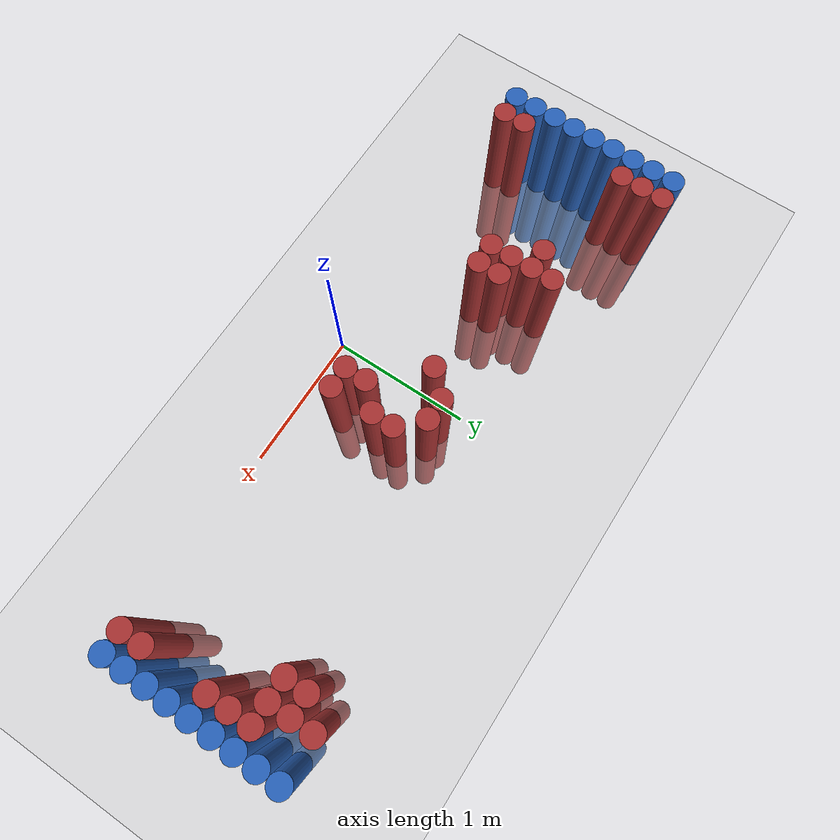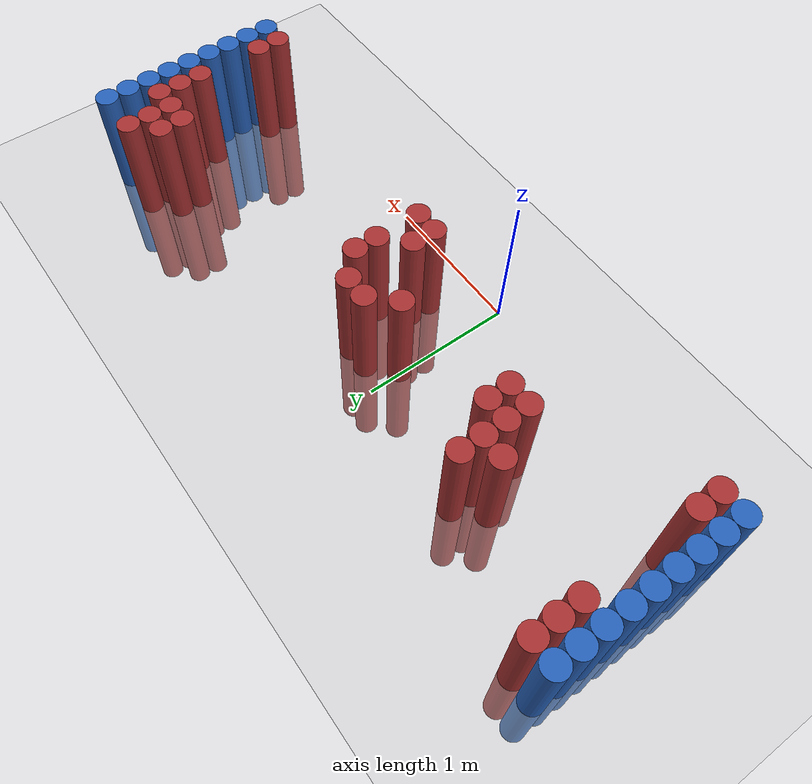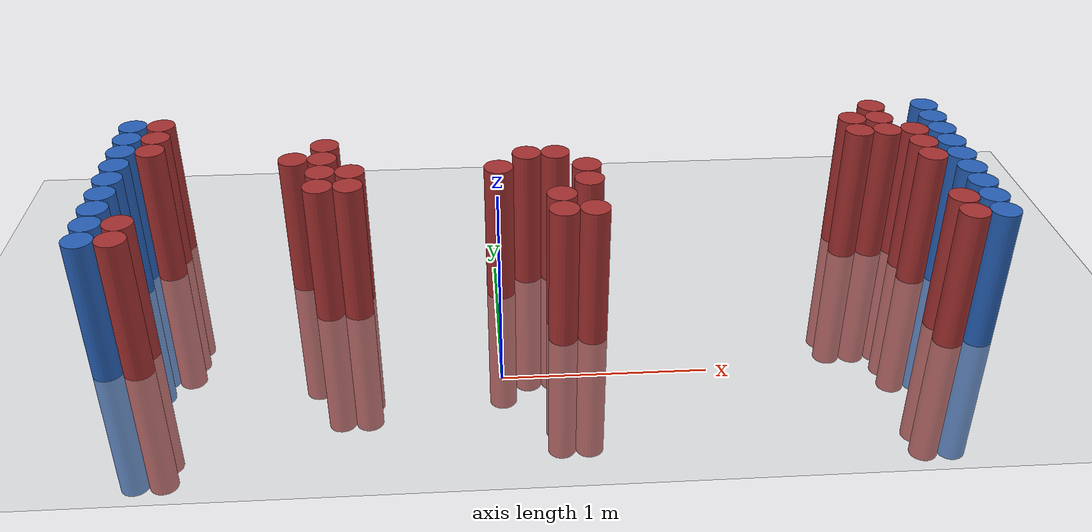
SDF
<sdf version="1.6">
 <world name="default">
  <model name="ground_plane">
   <static>1</static>
   <link name="link">
    <collision name="collision">
     <geometry><plane><normal>0 0 1</normal><size>100 100</size></plane></geometry>
     <surface><friction><ode><mu>100</mu><mu2>50</mu2></ode></friction></surface>
    </collision>
    <visual name="visual">
     <cast_shadows>0</cast_shadows>
     <geometry><plane><normal>0 0 1</normal><size>100 100</size></plane></geometry>
     <material>
      <script><uri>file://media/materials/scripts/gazebo.material</uri><name>Gazebo/Grey</name></script>
     </material>
    </visual>
   </link>
  </model>
  <model name="unit_cylinder_96">
   <static>1</static>
   <pose>-1.925000 0.175000 0.000000 0.000000 0.000000 0.000000</pose>
   <link name="link">
    <inertial>
     <mass>1</mass>
     <inertia><ixx>0.145833</ixx><ixy>0</ixy><ixz>0</ixz><iyy>0.145833</iyy><iyz>0</iyz><izz>0.125</izz></inertia>
    </inertial>
    <collision name="collision">
     <geometry><cylinder><radius>0.075000</radius><length>1.5</length></cylinder></geometry>
    </collision>
    <visual name="visual">
     <geometry><cylinder><radius>0.075000</radius><length>1.5</length></cylinder></geometry>
     <material>
      <ambient>0.152000 0.379000 0.720000 1</ambient>
      <diffuse>0.152000 0.379000 0.720000 1</diffuse>
     </material>
     <material>
      <script><name>Gazebo/Grey</name><uri>file://media/materials/scripts/gazebo.material</uri></script>
     </material>
    </visual>
   </link>
  </model>
  <model name="unit_cylinder_97">
   <static>1</static>
   <pose>-1.925000 0.325000 0.000000 0.000000 0.000000 0.000000</pose>
   <link name="link">
    <inertial>
     <mass>1</mass>
     <inertia><ixx>0.145833</ixx><ixy>0</ixy><ixz>0</ixz><iyy>0.145833</iyy><iyz>0</iyz><izz>0.125</izz></inertia>
    </inertial>
    <collision name="collision">
     <geometry><cylinder><radius>0.075000</radius><length>1.5</length></cylinder></geometry>
    </collision>
    <visual name="visual">
     <geometry><cylinder><radius>0.075000</radius><length>1.5</length></cylinder></geometry>
     <material>
      <ambient>0.152000 0.379000 0.720000 1</ambient>
      <diffuse>0.152000 0.379000 0.720000 1</diffuse>
     </material>
     <material>
      <script><name>Gazebo/Grey</name><uri>file://media/materials/scripts/gazebo.material</uri></script>
     </material>
    </visual>
   </link>
  </model>
  <model name="unit_cylinder_98">
   <static>1</static>
   <pose>-1.925000 0.475000 0.000000 0.000000 0.000000 0.000000</pose>
   <link name="link">
    <inertial>
     <mass>1</mass>
     <inertia><ixx>0.145833</ixx><ixy>0</ixy><ixz>0</ixz><iyy>0.145833</iyy><iyz>0</iyz><izz>0.125</izz></inertia>
    </inertial>
    <collision name="collision">
     <geometry><cylinder><radius>0.075000</radius><length>1.5</length></cylinder></geometry>
    </collision>
    <visual name="visual">
     <geometry><cylinder><radius>0.075000</radius><length>1.5</length></cylinder></geometry>
     <material>
      <ambient>0.152000 0.379000 0.720000 1</ambient>
      <diffuse>0.152000 0.379000 0.720000 1</diffuse>
     </material>
     <material>
      <script><name>Gazebo/Grey</name><uri>file://media/materials/scripts/gazebo.material</uri></script>
     </material>
    </visual>
   </link>
  </model>
  <model name="unit_cylinder_99">
   <static>1</static>
   <pose>-1.925000 0.625000 0.000000 0.000000 0.000000 0.000000</pose>
   <link name="link">
    <inertial>
     <mass>1</mass>
     <inertia><ixx>0.145833</ixx><ixy>0</ixy><ixz>0</ixz><iyy>0.145833</iyy><iyz>0</iyz><izz>0.125</izz></inertia>
    </inertial>
    <collision name="collision">
     <geometry><cylinder><radius>0.075000</radius><length>1.5</length></cylinder></geometry>
    </collision>
    <visual name="visual">
     <geometry><cylinder><radius>0.075000</radius><length>1.5</length></cylinder></geometry>
     <material>
      <ambient>0.152000 0.379000 0.720000 1</ambient>
      <diffuse>0.152000 0.379000 0.720000 1</diffuse>
     </material>
     <material>
      <script><name>Gazebo/Grey</name><uri>file://media/materials/scripts/gazebo.material</uri></script>
     </material>
    </visual>
   </link>
  </model>
  <model name="unit_cylinder_100">
   <static>1</static>
   <pose>-1.925000 0.775000 0.000000 0.000000 0.000000 0.000000</pose>
   <link name="link">
    <inertial>
     <mass>1</mass>
     <inertia><ixx>0.145833</ixx><ixy>0</ixy><ixz>0</ixz><iyy>0.145833</iyy><iyz>0</iyz><izz>0.125</izz></inertia>
    </inertial>
    <collision name="collision">
     <geometry><cylinder><radius>0.075000</radius><length>1.5</length></cylinder></geometry>
    </collision>
    <visual name="visual">
     <geometry><cylinder><radius>0.075000</radius><length>1.5</length></cylinder></geometry>
     <material>
      <ambient>0.152000 0.379000 0.720000 1</ambient>
      <diffuse>0.152000 0.379000 0.720000 1</diffuse>
     </material>
     <material>
      <script><name>Gazebo/Grey</name><uri>file://media/materials/scripts/gazebo.material</uri></script>
     </material>
    </visual>
   </link>
  </model>
  <model name="unit_cylinder_101">
   <static>1</static>
   <pose>-1.925000 0.925000 0.000000 0.000000 0.000000 0.000000</pose>
   <link name="link">
    <inertial>
     <mass>1</mass>
     <inertia><ixx>0.145833</ixx><ixy>0</ixy><ixz>0</ixz><iyy>0.145833</iyy><iyz>0</iyz><izz>0.125</izz></inertia>
    </inertial>
    <collision name="collision">
     <geometry><cylinder><radius>0.075000</radius><length>1.5</length></cylinder></geometry>
    </collision>
    <visual name="visual">
     <geometry><cylinder><radius>0.075000</radius><length>1.5</length></cylinder></geometry>
     <material>
      <ambient>0.152000 0.379000 0.720000 1</ambient>
      <diffuse>0.152000 0.379000 0.720000 1</diffuse>
     </material>
     <material>
      <script><name>Gazebo/Grey</name><uri>file://media/materials/scripts/gazebo.material</uri></script>
     </material>
    </visual>
   </link>
  </model>
  <model name="unit_cylinder_102">
   <static>1</static>
   <pose>-1.925000 1.075000 0.000000 0.000000 0.000000 0.000000</pose>
   <link name="link">
    <inertial>
     <mass>1</mass>
     <inertia><ixx>0.145833</ixx><ixy>0</ixy><ixz>0</ixz><iyy>0.145833</iyy><iyz>0</iyz><izz>0.125</izz></inertia>
    </inertial>
    <collision name="collision">
     <geometry><cylinder><radius>0.075000</radius><length>1.5</length></cylinder></geometry>
    </collision>
    <visual name="visual">
     <geometry><cylinder><radius>0.075000</radius><length>1.5</length></cylinder></geometry>
     <material>
      <ambient>0.152000 0.379000 0.720000 1</ambient>
      <diffuse>0.152000 0.379000 0.720000 1</diffuse>
     </material>
     <material>
      <script><name>Gazebo/Grey</name><uri>file://media/materials/scripts/gazebo.material</uri></script>
     </material>
    </visual>
   </link>
  </model>
  <model name="unit_cylinder_103">
   <static>1</static>
   <pose>-1.925000 1.225000 0.000000 0.000000 0.000000 0.000000</pose>
   <link name="link">
    <inertial>
     <mass>1</mass>
     <inertia><ixx>0.145833</ixx><ixy>0</ixy><ixz>0</ixz><iyy>0.145833</iyy><iyz>0</iyz><izz>0.125</izz></inertia>
    </inertial>
    <collision name="collision">
     <geometry><cylinder><radius>0.075000</radius><length>1.5</length></cylinder></geometry>
    </collision>
    <visual name="visual">
     <geometry><cylinder><radius>0.075000</radius><length>1.5</length></cylinder></geometry>
     <material>
      <ambient>0.152000 0.379000 0.720000 1</ambient>
      <diffuse>0.152000 0.379000 0.720000 1</diffuse>
     </material>
     <material>
      <script><name>Gazebo/Grey</name><uri>file://media/materials/scripts/gazebo.material</uri></script>
     </material>
    </visual>
   </link>
  </model>
  <model name="unit_cylinder_104">
   <static>1</static>
   <pose>-1.925000 1.375000 0.000000 0.000000 0.000000 0.000000</pose>
   <link name="link">
    <inertial>
     <mass>1</mass>
     <inertia><ixx>0.145833</ixx><ixy>0</ixy><ixz>0</ixz><iyy>0.145833</iyy><iyz>0</iyz><izz>0.125</izz></inertia>
    </inertial>
    <collision name="collision">
     <geometry><cylinder><radius>0.075000</radius><length>1.5</length></cylinder></geometry>
    </collision>
    <visual name="visual">
     <geometry><cylinder><radius>0.075000</radius><length>1.5</length></cylinder></geometry>
     <material>
      <ambient>0.152000 0.379000 0.720000 1</ambient>
      <diffuse>0.152000 0.379000 0.720000 1</diffuse>
     </material>
     <material>
      <script><name>Gazebo/Grey</name><uri>file://media/materials/scripts/gazebo.material</uri></script>
     </material>
    </visual>
   </link>
  </model>
  <model name="unit_cylinder_126">
   <static>1</static>
   <pose>-1.775000 0.175000 0.000000 0.000000 0.000000 0.000000</pose>
   <link name="link">
    <inertial>
     <mass>1</mass>
     <inertia><ixx>0.145833</ixx><ixy>0</ixy><ixz>0</ixz><iyy>0.145833</iyy><iyz>0</iyz><izz>0.125</izz></inertia>
    </inertial>
    <collision name="collision">
     <geometry><cylinder><radius>0.075000</radius><length>1.5</length></cylinder></geometry>
    </collision>
    <visual name="visual">
     <geometry><cylinder><radius>0.075000</radius><length>1.5</length></cylinder></geometry>
     <material>
      <ambient>0.648000 0.192000 0.192000 1</ambient>
      <diffuse>0.648000 0.192000 0.192000 1</diffuse>
     </material>
     <material>
      <script><name>Gazebo/Grey</name><uri>file://media/materials/scripts/gazebo.material</uri></script>
     </material>
    </visual>
   </link>
  </model>
  <model name="unit_cylinder_127">
   <static>1</static>
   <pose>-1.775000 0.325000 0.000000 0.000000 0.000000 0.000000</pose>
   <link name="link">
    <inertial>
     <mass>1</mass>
     <inertia><ixx>0.145833</ixx><ixy>0</ixy><ixz>0</ixz><iyy>0.145833</iyy><iyz>0</iyz><izz>0.125</izz></inertia>
    </inertial>
    <collision name="collision">
     <geometry><cylinder><radius>0.075000</radius><length>1.5</length></cylinder></geometry>
    </collision>
    <visual name="visual">
     <geometry><cylinder><radius>0.075000</radius><length>1.5</length></cylinder></geometry>
     <material>
      <ambient>0.648000 0.192000 0.192000 1</ambient>
      <diffuse>0.648000 0.192000 0.192000 1</diffuse>
     </material>
     <material>
      <script><name>Gazebo/Grey</name><uri>file://media/materials/scripts/gazebo.material</uri></script>
     </material>
    </visual>
   </link>
  </model>
  <model name="unit_cylinder_128">
   <static>1</static>
   <pose>-1.775000 1.075000 0.000000 0.000000 0.000000 0.000000</pose>
   <link name="link">
    <inertial>
     <mass>1</mass>
     <inertia><ixx>0.145833</ixx><ixy>0</ixy><ixz>0</ixz><iyy>0.145833</iyy><iyz>0</iyz><izz>0.125</izz></inertia>
    </inertial>
    <collision name="collision">
     <geometry><cylinder><radius>0.075000</radius><length>1.5</length></cylinder></geometry>
    </collision>
    <visual name="visual">
     <geometry><cylinder><radius>0.075000</radius><length>1.5</length></cylinder></geometry>
     <material>
      <ambient>0.648000 0.192000 0.192000 1</ambient>
      <diffuse>0.648000 0.192000 0.192000 1</diffuse>
     </material>
     <material>
      <script><name>Gazebo/Grey</name><uri>file://media/materials/scripts/gazebo.material</uri></script>
     </material>
    </visual>
   </link>
  </model>
  <model name="unit_cylinder_129">
   <static>1</static>
   <pose>-1.775000 1.225000 0.000000 0.000000 0.000000 0.000000</pose>
   <link name="link">
    <inertial>
     <mass>1</mass>
     <inertia><ixx>0.145833</ixx><ixy>0</ixy><ixz>0</ixz><iyy>0.145833</iyy><iyz>0</iyz><izz>0.125</izz></inertia>
    </inertial>
    <collision name="collision">
     <geometry><cylinder><radius>0.075000</radius><length>1.5</length></cylinder></geometry>
    </collision>
    <visual name="visual">
     <geometry><cylinder><radius>0.075000</radius><length>1.5</length></cylinder></geometry>
     <material>
      <ambient>0.648000 0.192000 0.192000 1</ambient>
      <diffuse>0.648000 0.192000 0.192000 1</diffuse>
     </material>
     <material>
      <script><name>Gazebo/Grey</name><uri>file://media/materials/scripts/gazebo.material</uri></script>
     </material>
    </visual>
   </link>
  </model>
  <model name="unit_cylinder_130">
   <static>1</static>
   <pose>-1.775000 1.375000 0.000000 0.000000 0.000000 0.000000</pose>
   <link name="link">
    <inertial>
     <mass>1</mass>
     <inertia><ixx>0.145833</ixx><ixy>0</ixy><ixz>0</ixz><iyy>0.145833</iyy><iyz>0</iyz><izz>0.125</izz></inertia>
    </inertial>
    <collision name="collision">
     <geometry><cylinder><radius>0.075000</radius><length>1.5</length></cylinder></geometry>
    </collision>
    <visual name="visual">
     <geometry><cylinder><radius>0.075000</radius><length>1.5</length></cylinder></geometry>
     <material>
      <ambient>0.648000 0.192000 0.192000 1</ambient>
      <diffuse>0.648000 0.192000 0.192000 1</diffuse>
     </material>
     <material>
      <script><name>Gazebo/Grey</name><uri>file://media/materials/scripts/gazebo.material</uri></script>
     </material>
    </visual>
   </link>
  </model>
  <model name="unit_cylinder_167">
   <static>1</static>
   <pose>-1.025000 0.925000 0.000000 0.000000 0.000000 0.000000</pose>
   <link name="link">
    <inertial>
     <mass>1</mass>
     <inertia><ixx>0.145833</ixx><ixy>0</ixy><ixz>0</ixz><iyy>0.145833</iyy><iyz>0</iyz><izz>0.125</izz></inertia>
    </inertial>
    <collision name="collision">
     <geometry><cylinder><radius>0.075000</radius><length>1.5</length></cylinder></geometry>
    </collision>
    <visual name="visual">
     <geometry><cylinder><radius>0.075000</radius><length>1.5</length></cylinder></geometry>
     <material>
      <ambient>0.648000 0.192000 0.192000 1</ambient>
      <diffuse>0.648000 0.192000 0.192000 1</diffuse>
     </material>
     <material>
      <script><name>Gazebo/Grey</name><uri>file://media/materials/scripts/gazebo.material</uri></script>
     </material>
    </visual>
   </link>
  </model>
  <model name="unit_cylinder_175">
   <static>1</static>
   <pose>-0.875000 0.625000 0.000000 0.000000 0.000000 0.000000</pose>
   <link name="link">
    <inertial>
     <mass>1</mass>
     <inertia><ixx>0.145833</ixx><ixy>0</ixy><ixz>0</ixz><iyy>0.145833</iyy><iyz>0</iyz><izz>0.125</izz></inertia>
    </inertial>
    <collision name="collision">
     <geometry><cylinder><radius>0.075000</radius><length>1.5</length></cylinder></geometry>
    </collision>
    <visual name="visual">
     <geometry><cylinder><radius>0.075000</radius><length>1.5</length></cylinder></geometry>
     <material>
      <ambient>0.648000 0.192000 0.192000 1</ambient>
      <diffuse>0.648000 0.192000 0.192000 1</diffuse>
     </material>
     <material>
      <script><name>Gazebo/Grey</name><uri>file://media/materials/scripts/gazebo.material</uri></script>
     </material>
    </visual>
   </link>
  </model>
  <model name="unit_cylinder_176">
   <static>1</static>
   <pose>-0.875000 0.775000 0.000000 0.000000 0.000000 0.000000</pose>
   <link name="link">
    <inertial>
     <mass>1</mass>
     <inertia><ixx>0.145833</ixx><ixy>0</ixy><ixz>0</ixz><iyy>0.145833</iyy><iyz>0</iyz><izz>0.125</izz></inertia>
    </inertial>
    <collision name="collision">
     <geometry><cylinder><radius>0.075000</radius><length>1.5</length></cylinder></geometry>
    </collision>
    <visual name="visual">
     <geometry><cylinder><radius>0.075000</radius><length>1.5</length></cylinder></geometry>
     <material>
      <ambient>0.648000 0.192000 0.192000 1</ambient>
      <diffuse>0.648000 0.192000 0.192000 1</diffuse>
     </material>
     <material>
      <script><name>Gazebo/Grey</name><uri>file://media/materials/scripts/gazebo.material</uri></script>
     </material>
    </visual>
   </link>
  </model>
  <model name="unit_cylinder_177">
   <static>1</static>
   <pose>-0.875000 0.925000 0.000000 0.000000 0.000000 0.000000</pose>
   <link name="link">
    <inertial>
     <mass>1</mass>
     <inertia><ixx>0.145833</ixx><ixy>0</ixy><ixz>0</ixz><iyy>0.145833</iyy><iyz>0</iyz><izz>0.125</izz></inertia>
    </inertial>
    <collision name="collision">
     <geometry><cylinder><radius>0.075000</radius><length>1.5</length></cylinder></geometry>
    </collision>
    <visual name="visual">
     <geometry><cylinder><radius>0.075000</radius><length>1.5</length></cylinder></geometry>
     <material>
      <ambient>0.648000 0.192000 0.192000 1</ambient>
      <diffuse>0.648000 0.192000 0.192000 1</diffuse>
     </material>
     <material>
      <script><name>Gazebo/Grey</name><uri>file://media/materials/scripts/gazebo.material</uri></script>
     </material>
    </visual>
   </link>
  </model>
  <model name="unit_cylinder_178">
   <static>1</static>
   <pose>-0.875000 1.075000 0.000000 0.000000 0.000000 0.000000</pose>
   <link name="link">
    <inertial>
     <mass>1</mass>
     <inertia><ixx>0.145833</ixx><ixy>0</ixy><ixz>0</ixz><iyy>0.145833</iyy><iyz>0</iyz><izz>0.125</izz></inertia>
    </inertial>
    <collision name="collision">
     <geometry><cylinder><radius>0.075000</radius><length>1.5</length></cylinder></geometry>
    </collision>
    <visual name="visual">
     <geometry><cylinder><radius>0.075000</radius><length>1.5</length></cylinder></geometry>
     <material>
      <ambient>0.648000 0.192000 0.192000 1</ambient>
      <diffuse>0.648000 0.192000 0.192000 1</diffuse>
     </material>
     <material>
      <script><name>Gazebo/Grey</name><uri>file://media/materials/scripts/gazebo.material</uri></script>
     </material>
    </visual>
   </link>
  </model>
  <model name="unit_cylinder_181">
   <static>1</static>
   <pose>-0.725000 0.625000 0.000000 0.000000 0.000000 0.000000</pose>
   <link name="link">
    <inertial>
     <mass>1</mass>
     <inertia><ixx>0.145833</ixx><ixy>0</ixy><ixz>0</ixz><iyy>0.145833</iyy><iyz>0</iyz><izz>0.125</izz></inertia>
    </inertial>
    <collision name="collision">
     <geometry><cylinder><radius>0.075000</radius><length>1.5</length></cylinder></geometry>
    </collision>
    <visual name="visual">
     <geometry><cylinder><radius>0.075000</radius><length>1.5</length></cylinder></geometry>
     <material>
      <ambient>0.648000 0.192000 0.192000 1</ambient>
      <diffuse>0.648000 0.192000 0.192000 1</diffuse>
     </material>
     <material>
      <script><name>Gazebo/Grey</name><uri>file://media/materials/scripts/gazebo.material</uri></script>
     </material>
    </visual>
   </link>
  </model>
  <model name="unit_cylinder_182">
   <static>1</static>
   <pose>-0.725000 0.775000 0.000000 0.000000 0.000000 0.000000</pose>
   <link name="link">
    <inertial>
     <mass>1</mass>
     <inertia><ixx>0.145833</ixx><ixy>0</ixy><ixz>0</ixz><iyy>0.145833</iyy><iyz>0</iyz><izz>0.125</izz></inertia>
    </inertial>
    <collision name="collision">
     <geometry><cylinder><radius>0.075000</radius><length>1.5</length></cylinder></geometry>
    </collision>
    <visual name="visual">
     <geometry><cylinder><radius>0.075000</radius><length>1.5</length></cylinder></geometry>
     <material>
      <ambient>0.648000 0.192000 0.192000 1</ambient>
      <diffuse>0.648000 0.192000 0.192000 1</diffuse>
     </material>
     <material>
      <script><name>Gazebo/Grey</name><uri>file://media/materials/scripts/gazebo.material</uri></script>
     </material>
    </visual>
   </link>
  </model>
  <model name="unit_cylinder_184">
   <static>1</static>
   <pose>0.025000 0.775000 0.000000 0.000000 0.000000 0.000000</pose>
   <link name="link">
    <inertial>
     <mass>1</mass>
     <inertia><ixx>0.145833</ixx><ixy>0</ixy><ixz>0</ixz><iyy>0.145833</iyy><iyz>0</iyz><izz>0.125</izz></inertia>
    </inertial>
    <collision name="collision">
     <geometry><cylinder><radius>0.075000</radius><length>1.5</length></cylinder></geometry>
    </collision>
    <visual name="visual">
     <geometry><cylinder><radius>0.075000</radius><length>1.5</length></cylinder></geometry>
     <material>
      <ambient>0.648000 0.192000 0.192000 1</ambient>
      <diffuse>0.648000 0.192000 0.192000 1</diffuse>
     </material>
     <material>
      <script><name>Gazebo/Grey</name><uri>file://media/materials/scripts/gazebo.material</uri></script>
     </material>
    </visual>
   </link>
  </model>
  <model name="unit_cylinder_185">
   <static>1</static>
   <pose>0.175000 0.925000 0.000000 0.000000 0.000000 0.000000</pose>
   <link name="link">
    <inertial>
     <mass>1</mass>
     <inertia><ixx>0.145833</ixx><ixy>0</ixy><ixz>0</ixz><iyy>0.145833</iyy><iyz>0</iyz><izz>0.125</izz></inertia>
    </inertial>
    <collision name="collision">
     <geometry><cylinder><radius>0.075000</radius><length>1.5</length></cylinder></geometry>
    </collision>
    <visual name="visual">
     <geometry><cylinder><radius>0.075000</radius><length>1.5</length></cylinder></geometry>
     <material>
      <ambient>0.648000 0.192000 0.192000 1</ambient>
      <diffuse>0.648000 0.192000 0.192000 1</diffuse>
     </material>
     <material>
      <script><name>Gazebo/Grey</name><uri>file://media/materials/scripts/gazebo.material</uri></script>
     </material>
    </visual>
   </link>
  </model>
  <model name="unit_cylinder_186">
   <static>1</static>
   <pose>0.325000 0.325000 0.000000 0.000000 0.000000 0.000000</pose>
   <link name="link">
    <inertial>
     <mass>1</mass>
     <inertia><ixx>0.145833</ixx><ixy>0</ixy><ixz>0</ixz><iyy>0.145833</iyy><iyz>0</iyz><izz>0.125</izz></inertia>
    </inertial>
    <collision name="collision">
     <geometry><cylinder><radius>0.075000</radius><length>1.5</length></cylinder></geometry>
    </collision>
    <visual name="visual">
     <geometry><cylinder><radius>0.075000</radius><length>1.5</length></cylinder></geometry>
     <material>
      <ambient>0.648000 0.192000 0.192000 1</ambient>
      <diffuse>0.648000 0.192000 0.192000 1</diffuse>
     </material>
     <material>
      <script><name>Gazebo/Grey</name><uri>file://media/materials/scripts/gazebo.material</uri></script>
     </material>
    </visual>
   </link>
  </model>
  <model name="unit_cylinder_187">
   <static>1</static>
   <pose>0.325000 0.475000 0.000000 0.000000 0.000000 0.000000</pose>
   <link name="link">
    <inertial>
     <mass>1</mass>
     <inertia><ixx>0.145833</ixx><ixy>0</ixy><ixz>0</ixz><iyy>0.145833</iyy><iyz>0</iyz><izz>0.125</izz></inertia>
    </inertial>
    <collision name="collision">
     <geometry><cylinder><radius>0.075000</radius><length>1.5</length></cylinder></geometry>
    </collision>
    <visual name="visual">
     <geometry><cylinder><radius>0.075000</radius><length>1.5</length></cylinder></geometry>
     <material>
      <ambient>0.648000 0.192000 0.192000 1</ambient>
      <diffuse>0.648000 0.192000 0.192000 1</diffuse>
     </material>
     <material>
      <script><name>Gazebo/Grey</name><uri>file://media/materials/scripts/gazebo.material</uri></script>
     </material>
    </visual>
   </link>
  </model>
  <model name="unit_cylinder_188">
   <static>1</static>
   <pose>0.325000 0.925000 0.000000 0.000000 0.000000 0.000000</pose>
   <link name="link">
    <inertial>
     <mass>1</mass>
     <inertia><ixx>0.145833</ixx><ixy>0</ixy><ixz>0</ixz><iyy>0.145833</iyy><iyz>0</iyz><izz>0.125</izz></inertia>
    </inertial>
    <collision name="collision">
     <geometry><cylinder><radius>0.075000</radius><length>1.5</length></cylinder></geometry>
    </collision>
    <visual name="visual">
     <geometry><cylinder><radius>0.075000</radius><length>1.5</length></cylinder></geometry>
     <material>
      <ambient>0.648000 0.192000 0.192000 1</ambient>
      <diffuse>0.648000 0.192000 0.192000 1</diffuse>
     </material>
     <material>
      <script><name>Gazebo/Grey</name><uri>file://media/materials/scripts/gazebo.material</uri></script>
     </material>
    </visual>
   </link>
  </model>
  <model name="unit_cylinder_189">
   <static>1</static>
   <pose>0.475000 0.325000 0.000000 0.000000 0.000000 0.000000</pose>
   <link name="link">
    <inertial>
     <mass>1</mass>
     <inertia><ixx>0.145833</ixx><ixy>0</ixy><ixz>0</ixz><iyy>0.145833</iyy><iyz>0</iyz><izz>0.125</izz></inertia>
    </inertial>
    <collision name="collision">
     <geometry><cylinder><radius>0.075000</radius><length>1.5</length></cylinder></geometry>
    </collision>
    <visual name="visual">
     <geometry><cylinder><radius>0.075000</radius><length>1.5</length></cylinder></geometry>
     <material>
      <ambient>0.648000 0.192000 0.192000 1</ambient>
      <diffuse>0.648000 0.192000 0.192000 1</diffuse>
     </material>
     <material>
      <script><name>Gazebo/Grey</name><uri>file://media/materials/scripts/gazebo.material</uri></script>
     </material>
    </visual>
   </link>
  </model>
  <model name="unit_cylinder_190">
   <static>1</static>
   <pose>0.475000 0.625000 0.000000 0.000000 0.000000 0.000000</pose>
   <link name="link">
    <inertial>
     <mass>1</mass>
     <inertia><ixx>0.145833</ixx><ixy>0</ixy><ixz>0</ixz><iyy>0.145833</iyy><iyz>0</iyz><izz>0.125</izz></inertia>
    </inertial>
    <collision name="collision">
     <geometry><cylinder><radius>0.075000</radius><length>1.5</length></cylinder></geometry>
    </collision>
    <visual name="visual">
     <geometry><cylinder><radius>0.075000</radius><length>1.5</length></cylinder></geometry>
     <material>
      <ambient>0.648000 0.192000 0.192000 1</ambient>
      <diffuse>0.648000 0.192000 0.192000 1</diffuse>
     </material>
     <material>
      <script><name>Gazebo/Grey</name><uri>file://media/materials/scripts/gazebo.material</uri></script>
     </material>
    </visual>
   </link>
  </model>
  <model name="unit_cylinder_191">
   <static>1</static>
   <pose>0.475000 0.775000 0.000000 0.000000 0.000000 0.000000</pose>
   <link name="link">
    <inertial>
     <mass>1</mass>
     <inertia><ixx>0.145833</ixx><ixy>0</ixy><ixz>0</ixz><iyy>0.145833</iyy><iyz>0</iyz><izz>0.125</izz></inertia>
    </inertial>
    <collision name="collision">
     <geometry><cylinder><radius>0.075000</radius><length>1.5</length></cylinder></geometry>
    </collision>
    <visual name="visual">
     <geometry><cylinder><radius>0.075000</radius><length>1.5</length></cylinder></geometry>
     <material>
      <ambient>0.648000 0.192000 0.192000 1</ambient>
      <diffuse>0.648000 0.192000 0.192000 1</diffuse>
     </material>
     <material>
      <script><name>Gazebo/Grey</name><uri>file://media/materials/scripts/gazebo.material</uri></script>
     </material>
    </visual>
   </link>
  </model>
  <model name="unit_cylinder_224">
   <static>1</static>
   <pose>1.975000 1.075000 0.000000 0.000000 0.000000 0.000000</pose>
   <link name="link">
    <inertial>
     <mass>1</mass>
     <inertia><ixx>0.145833</ixx><ixy>0</ixy><ixz>0</ixz><iyy>0.145833</iyy><iyz>0</iyz><izz>0.125</izz></inertia>
    </inertial>
    <collision name="collision">
     <geometry><cylinder><radius>0.075000</radius><length>1.5</length></cylinder></geometry>
    </collision>
    <visual name="visual">
     <geometry><cylinder><radius>0.075000</radius><length>1.5</length></cylinder></geometry>
     <material>
      <ambient>0.648000 0.192000 0.192000 1</ambient>
      <diffuse>0.648000 0.192000 0.192000 1</diffuse>
     </material>
     <material>
      <script><name>Gazebo/Grey</name><uri>file://media/materials/scripts/gazebo.material</uri></script>
     </material>
    </visual>
   </link>
  </model>
  <model name="unit_cylinder_225">
   <static>1</static>
   <pose>1.975000 1.225000 0.000000 0.000000 0.000000 0.000000</pose>
   <link name="link">
    <inertial>
     <mass>1</mass>
     <inertia><ixx>0.145833</ixx><ixy>0</ixy><ixz>0</ixz><iyy>0.145833</iyy><iyz>0</iyz><izz>0.125</izz></inertia>
    </inertial>
    <collision name="collision">
     <geometry><cylinder><radius>0.075000</radius><length>1.5</length></cylinder></geometry>
    </collision>
    <visual name="visual">
     <geometry><cylinder><radius>0.075000</radius><length>1.5</length></cylinder></geometry>
     <material>
      <ambient>0.648000 0.192000 0.192000 1</ambient>
      <diffuse>0.648000 0.192000 0.192000 1</diffuse>
     </material>
     <material>
      <script><name>Gazebo/Grey</name><uri>file://media/materials/scripts/gazebo.material</uri></script>
     </material>
    </visual>
   </link>
  </model>
  <model name="unit_cylinder_231">
   <static>1</static>
   <pose>2.125000 1.075000 0.000000 0.000000 0.000000 0.000000</pose>
   <link name="link">
    <inertial>
     <mass>1</mass>
     <inertia><ixx>0.145833</ixx><ixy>0</ixy><ixz>0</ixz><iyy>0.145833</iyy><iyz>0</iyz><izz>0.125</izz></inertia>
    </inertial>
    <collision name="collision">
     <geometry><cylinder><radius>0.075000</radius><length>1.5</length></cylinder></geometry>
    </collision>
    <visual name="visual">
     <geometry><cylinder><radius>0.075000</radius><length>1.5</length></cylinder></geometry>
     <material>
      <ambient>0.648000 0.192000 0.192000 1</ambient>
      <diffuse>0.648000 0.192000 0.192000 1</diffuse>
     </material>
     <material>
      <script><name>Gazebo/Grey</name><uri>file://media/materials/scripts/gazebo.material</uri></script>
     </material>
    </visual>
   </link>
  </model>
  <model name="unit_cylinder_232">
   <static>1</static>
   <pose>2.125000 1.225000 0.000000 0.000000 0.000000 0.000000</pose>
   <link name="link">
    <inertial>
     <mass>1</mass>
     <inertia><ixx>0.145833</ixx><ixy>0</ixy><ixz>0</ixz><iyy>0.145833</iyy><iyz>0</iyz><izz>0.125</izz></inertia>
    </inertial>
    <collision name="collision">
     <geometry><cylinder><radius>0.075000</radius><length>1.5</length></cylinder></geometry>
    </collision>
    <visual name="visual">
     <geometry><cylinder><radius>0.075000</radius><length>1.5</length></cylinder></geometry>
     <material>
      <ambient>0.648000 0.192000 0.192000 1</ambient>
      <diffuse>0.648000 0.192000 0.192000 1</diffuse>
     </material>
     <material>
      <script><name>Gazebo/Grey</name><uri>file://media/materials/scripts/gazebo.material</uri></script>
     </material>
    </visual>
   </link>
  </model>
  <model name="unit_cylinder_233">
   <static>1</static>
   <pose>2.125000 1.375000 0.000000 0.000000 0.000000 0.000000</pose>
   <link name="link">
    <inertial>
     <mass>1</mass>
     <inertia><ixx>0.145833</ixx><ixy>0</ixy><ixz>0</ixz><iyy>0.145833</iyy><iyz>0</iyz><izz>0.125</izz></inertia>
    </inertial>
    <collision name="collision">
     <geometry><cylinder><radius>0.075000</radius><length>1.5</length></cylinder></geometry>
    </collision>
    <visual name="visual">
     <geometry><cylinder><radius>0.075000</radius><length>1.5</length></cylinder></geometry>
     <material>
      <ambient>0.648000 0.192000 0.192000 1</ambient>
      <diffuse>0.648000 0.192000 0.192000 1</diffuse>
     </material>
     <material>
      <script><name>Gazebo/Grey</name><uri>file://media/materials/scripts/gazebo.material</uri></script>
     </material>
    </visual>
   </link>
  </model>
  <model name="unit_cylinder_240">
   <static>1</static>
   <pose>2.275000 0.175000 0.000000 0.000000 0.000000 0.000000</pose>
   <link name="link">
    <inertial>
     <mass>1</mass>
     <inertia><ixx>0.145833</ixx><ixy>0</ixy><ixz>0</ixz><iyy>0.145833</iyy><iyz>0</iyz><izz>0.125</izz></inertia>
    </inertial>
    <collision name="collision">
     <geometry><cylinder><radius>0.075000</radius><length>1.5</length></cylinder></geometry>
    </collision>
    <visual name="visual">
     <geometry><cylinder><radius>0.075000</radius><length>1.5</length></cylinder></geometry>
     <material>
      <ambient>0.648000 0.192000 0.192000 1</ambient>
      <diffuse>0.648000 0.192000 0.192000 1</diffuse>
     </material>
     <material>
      <script><name>Gazebo/Grey</name><uri>file://media/materials/scripts/gazebo.material</uri></script>
     </material>
    </visual>
   </link>
  </model>
  <model name="unit_cylinder_241">
   <static>1</static>
   <pose>2.275000 0.325000 0.000000 0.000000 0.000000 0.000000</pose>
   <link name="link">
    <inertial>
     <mass>1</mass>
     <inertia><ixx>0.145833</ixx><ixy>0</ixy><ixz>0</ixz><iyy>0.145833</iyy><iyz>0</iyz><izz>0.125</izz></inertia>
    </inertial>
    <collision name="collision">
     <geometry><cylinder><radius>0.075000</radius><length>1.5</length></cylinder></geometry>
    </collision>
    <visual name="visual">
     <geometry><cylinder><radius>0.075000</radius><length>1.5</length></cylinder></geometry>
     <material>
      <ambient>0.648000 0.192000 0.192000 1</ambient>
      <diffuse>0.648000 0.192000 0.192000 1</diffuse>
     </material>
     <material>
      <script><name>Gazebo/Grey</name><uri>file://media/materials/scripts/gazebo.material</uri></script>
     </material>
    </visual>
   </link>
  </model>
  <model name="unit_cylinder_242">
   <static>1</static>
   <pose>2.275000 0.775000 0.000000 0.000000 0.000000 0.000000</pose>
   <link name="link">
    <inertial>
     <mass>1</mass>
     <inertia><ixx>0.145833</ixx><ixy>0</ixy><ixz>0</ixz><iyy>0.145833</iyy><iyz>0</iyz><izz>0.125</izz></inertia>
    </inertial>
    <collision name="collision">
     <geometry><cylinder><radius>0.075000</radius><length>1.5</length></cylinder></geometry>
    </collision>
    <visual name="visual">
     <geometry><cylinder><radius>0.075000</radius><length>1.5</length></cylinder></geometry>
     <material>
      <ambient>0.648000 0.192000 0.192000 1</ambient>
      <diffuse>0.648000 0.192000 0.192000 1</diffuse>
     </material>
     <material>
      <script><name>Gazebo/Grey</name><uri>file://media/materials/scripts/gazebo.material</uri></script>
     </material>
    </visual>
   </link>
  </model>
  <model name="unit_cylinder_243">
   <static>1</static>
   <pose>2.275000 0.925000 0.000000 0.000000 0.000000 0.000000</pose>
   <link name="link">
    <inertial>
     <mass>1</mass>
     <inertia><ixx>0.145833</ixx><ixy>0</ixy><ixz>0</ixz><iyy>0.145833</iyy><iyz>0</iyz><izz>0.125</izz></inertia>
    </inertial>
    <collision name="collision">
     <geometry><cylinder><radius>0.075000</radius><length>1.5</length></cylinder></geometry>
    </collision>
    <visual name="visual">
     <geometry><cylinder><radius>0.075000</radius><length>1.5</length></cylinder></geometry>
     <material>
      <ambient>0.648000 0.192000 0.192000 1</ambient>
      <diffuse>0.648000 0.192000 0.192000 1</diffuse>
     </material>
     <material>
      <script><name>Gazebo/Grey</name><uri>file://media/materials/scripts/gazebo.material</uri></script>
     </material>
    </visual>
   </link>
  </model>
  <model name="unit_cylinder_244">
   <static>1</static>
   <pose>2.275000 1.075000 0.000000 0.000000 0.000000 0.000000</pose>
   <link name="link">
    <inertial>
     <mass>1</mass>
     <inertia><ixx>0.145833</ixx><ixy>0</ixy><ixz>0</ixz><iyy>0.145833</iyy><iyz>0</iyz><izz>0.125</izz></inertia>
    </inertial>
    <collision name="collision">
     <geometry><cylinder><radius>0.075000</radius><length>1.5</length></cylinder></geometry>
    </collision>
    <visual name="visual">
     <geometry><cylinder><radius>0.075000</radius><length>1.5</length></cylinder></geometry>
     <material>
      <ambient>0.648000 0.192000 0.192000 1</ambient>
      <diffuse>0.648000 0.192000 0.192000 1</diffuse>
     </material>
     <material>
      <script><name>Gazebo/Grey</name><uri>file://media/materials/scripts/gazebo.material</uri></script>
     </material>
    </visual>
   </link>
  </model>
  <model name="unit_cylinder_258">
   <static>1</static>
   <pose>2.425000 0.175000 0.000000 0.000000 0.000000 0.000000</pose>
   <link name="link">
    <inertial>
     <mass>1</mass>
     <inertia><ixx>0.145833</ixx><ixy>0</ixy><ixz>0</ixz><iyy>0.145833</iyy><iyz>0</iyz><izz>0.125</izz></inertia>
    </inertial>
    <collision name="collision">
     <geometry><cylinder><radius>0.075000</radius><length>1.5</length></cylinder></geometry>
    </collision>
    <visual name="visual">
     <geometry><cylinder><radius>0.075000</radius><length>1.5</length></cylinder></geometry>
     <material>
      <ambient>0.152000 0.379000 0.720000 1</ambient>
      <diffuse>0.152000 0.379000 0.720000 1</diffuse>
     </material>
     <material>
      <script><name>Gazebo/Grey</name><uri>file://media/materials/scripts/gazebo.material</uri></script>
     </material>
    </visual>
   </link>
  </model>
  <model name="unit_cylinder_259">
   <static>1</static>
   <pose>2.425000 0.325000 0.000000 0.000000 0.000000 0.000000</pose>
   <link name="link">
    <inertial>
     <mass>1</mass>
     <inertia><ixx>0.145833</ixx><ixy>0</ixy><ixz>0</ixz><iyy>0.145833</iyy><iyz>0</iyz><izz>0.125</izz></inertia>
    </inertial>
    <collision name="collision">
     <geometry><cylinder><radius>0.075000</radius><length>1.5</length></cylinder></geometry>
    </collision>
    <visual name="visual">
     <geometry><cylinder><radius>0.075000</radius><length>1.5</length></cylinder></geometry>
     <material>
      <ambient>0.152000 0.379000 0.720000 1</ambient>
      <diffuse>0.152000 0.379000 0.720000 1</diffuse>
     </material>
     <material>
      <script><name>Gazebo/Grey</name><uri>file://media/materials/scripts/gazebo.material</uri></script>
     </material>
    </visual>
   </link>
  </model>
  <model name="unit_cylinder_260">
   <static>1</static>
   <pose>2.425000 0.475000 0.000000 0.000000 0.000000 0.000000</pose>
   <link name="link">
    <inertial>
     <mass>1</mass>
     <inertia><ixx>0.145833</ixx><ixy>0</ixy><ixz>0</ixz><iyy>0.145833</iyy><iyz>0</iyz><izz>0.125</izz></inertia>
    </inertial>
    <collision name="collision">
     <geometry><cylinder><radius>0.075000</radius><length>1.5</length></cylinder></geometry>
    </collision>
    <visual name="visual">
     <geometry><cylinder><radius>0.075000</radius><length>1.5</length></cylinder></geometry>
     <material>
      <ambient>0.152000 0.379000 0.720000 1</ambient>
      <diffuse>0.152000 0.379000 0.720000 1</diffuse>
     </material>
     <material>
      <script><name>Gazebo/Grey</name><uri>file://media/materials/scripts/gazebo.material</uri></script>
     </material>
    </visual>
   </link>
  </model>
  <model name="unit_cylinder_261">
   <static>1</static>
   <pose>2.425000 0.625000 0.000000 0.000000 0.000000 0.000000</pose>
   <link name="link">
    <inertial>
     <mass>1</mass>
     <inertia><ixx>0.145833</ixx><ixy>0</ixy><ixz>0</ixz><iyy>0.145833</iyy><iyz>0</iyz><izz>0.125</izz></inertia>
    </inertial>
    <collision name="collision">
     <geometry><cylinder><radius>0.075000</radius><length>1.5</length></cylinder></geometry>
    </collision>
    <visual name="visual">
     <geometry><cylinder><radius>0.075000</radius><length>1.5</length></cylinder></geometry>
     <material>
      <ambient>0.152000 0.379000 0.720000 1</ambient>
      <diffuse>0.152000 0.379000 0.720000 1</diffuse>
     </material>
     <material>
      <script><name>Gazebo/Grey</name><uri>file://media/materials/scripts/gazebo.material</uri></script>
     </material>
    </visual>
   </link>
  </model>
  <model name="unit_cylinder_262">
   <static>1</static>
   <pose>2.425000 0.775000 0.000000 0.000000 0.000000 0.000000</pose>
   <link name="link">
    <inertial>
     <mass>1</mass>
     <inertia><ixx>0.145833</ixx><ixy>0</ixy><ixz>0</ixz><iyy>0.145833</iyy><iyz>0</iyz><izz>0.125</izz></inertia>
    </inertial>
    <collision name="collision">
     <geometry><cylinder><radius>0.075000</radius><length>1.5</length></cylinder></geometry>
    </collision>
    <visual name="visual">
     <geometry><cylinder><radius>0.075000</radius><length>1.5</length></cylinder></geometry>
     <material>
      <ambient>0.152000 0.379000 0.720000 1</ambient>
      <diffuse>0.152000 0.379000 0.720000 1</diffuse>
     </material>
     <material>
      <script><name>Gazebo/Grey</name><uri>file://media/materials/scripts/gazebo.material</uri></script>
     </material>
    </visual>
   </link>
  </model>
  <model name="unit_cylinder_263">
   <static>1</static>
   <pose>2.425000 0.925000 0.000000 0.000000 0.000000 0.000000</pose>
   <link name="link">
    <inertial>
     <mass>1</mass>
     <inertia><ixx>0.145833</ixx><ixy>0</ixy><ixz>0</ixz><iyy>0.145833</iyy><iyz>0</iyz><izz>0.125</izz></inertia>
    </inertial>
    <collision name="collision">
     <geometry><cylinder><radius>0.075000</radius><length>1.5</length></cylinder></geometry>
    </collision>
    <visual name="visual">
     <geometry><cylinder><radius>0.075000</radius><length>1.5</length></cylinder></geometry>
     <material>
      <ambient>0.152000 0.379000 0.720000 1</ambient>
      <diffuse>0.152000 0.379000 0.720000 1</diffuse>
     </material>
     <material>
      <script><name>Gazebo/Grey</name><uri>file://media/materials/scripts/gazebo.material</uri></script>
     </material>
    </visual>
   </link>
  </model>
  <model name="unit_cylinder_264">
   <static>1</static>
   <pose>2.425000 1.075000 0.000000 0.000000 0.000000 0.000000</pose>
   <link name="link">
    <inertial>
     <mass>1</mass>
     <inertia><ixx>0.145833</ixx><ixy>0</ixy><ixz>0</ixz><iyy>0.145833</iyy><iyz>0</iyz><izz>0.125</izz></inertia>
    </inertial>
    <collision name="collision">
     <geometry><cylinder><radius>0.075000</radius><length>1.5</length></cylinder></geometry>
    </collision>
    <visual name="visual">
     <geometry><cylinder><radius>0.075000</radius><length>1.5</length></cylinder></geometry>
     <material>
      <ambient>0.152000 0.379000 0.720000 1</ambient>
      <diffuse>0.152000 0.379000 0.720000 1</diffuse>
     </material>
     <material>
      <script><name>Gazebo/Grey</name><uri>file://media/materials/scripts/gazebo.material</uri></script>
     </material>
    </visual>
   </link>
  </model>
  <model name="unit_cylinder_265">
   <static>1</static>
   <pose>2.425000 1.225000 0.000000 0.000000 0.000000 0.000000</pose>
   <link name="link">
    <inertial>
     <mass>1</mass>
     <inertia><ixx>0.145833</ixx><ixy>0</ixy><ixz>0</ixz><iyy>0.145833</iyy><iyz>0</iyz><izz>0.125</izz></inertia>
    </inertial>
    <collision name="collision">
     <geometry><cylinder><radius>0.075000</radius><length>1.5</length></cylinder></geometry>
    </collision>
    <visual name="visual">
     <geometry><cylinder><radius>0.075000</radius><length>1.5</length></cylinder></geometry>
     <material>
      <ambient>0.152000 0.379000 0.720000 1</ambient>
      <diffuse>0.152000 0.379000 0.720000 1</diffuse>
     </material>
     <material>
      <script><name>Gazebo/Grey</name><uri>file://media/materials/scripts/gazebo.material</uri></script>
     </material>
    </visual>
   </link>
  </model>
  <model name="unit_cylinder_266">
   <static>1</static>
   <pose>2.425000 1.375000 0.000000 0.000000 0.000000 0.000000</pose>
   <link name="link">
    <inertial>
     <mass>1</mass>
     <inertia><ixx>0.145833</ixx><ixy>0</ixy><ixz>0</ixz><iyy>0.145833</iyy><iyz>0</iyz><izz>0.125</izz></inertia>
    </inertial>
    <collision name="collision">
     <geometry><cylinder><radius>0.075000</radius><length>1.5</length></cylinder></geometry>
    </collision>
    <visual name="visual">
     <geometry><cylinder><radius>0.075000</radius><length>1.5</length></cylinder></geometry>
     <material>
      <ambient>0.152000 0.379000 0.720000 1</ambient>
      <diffuse>0.152000 0.379000 0.720000 1</diffuse>
     </material>
     <material>
      <script><name>Gazebo/Grey</name><uri>file://media/materials/scripts/gazebo.material</uri></script>
     </material>
    </visual>
   </link>
  </model>
 </world>
</sdf>
